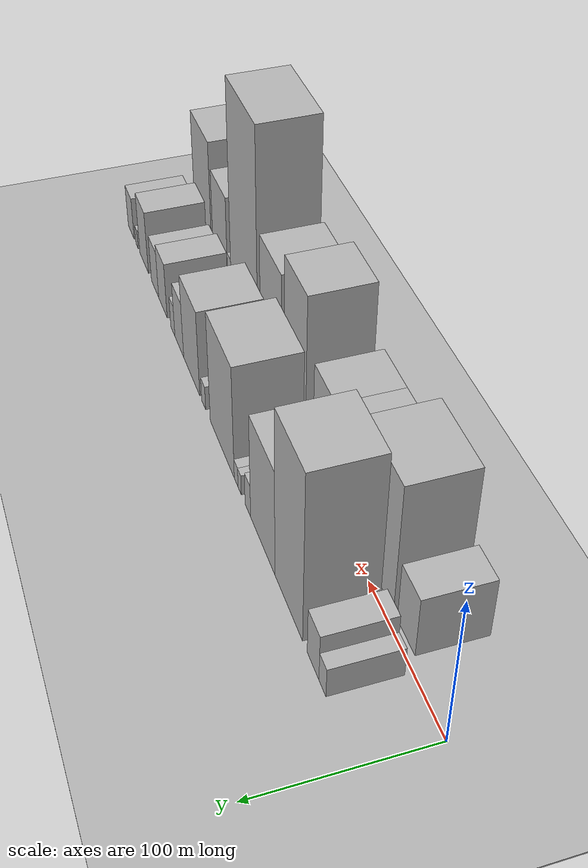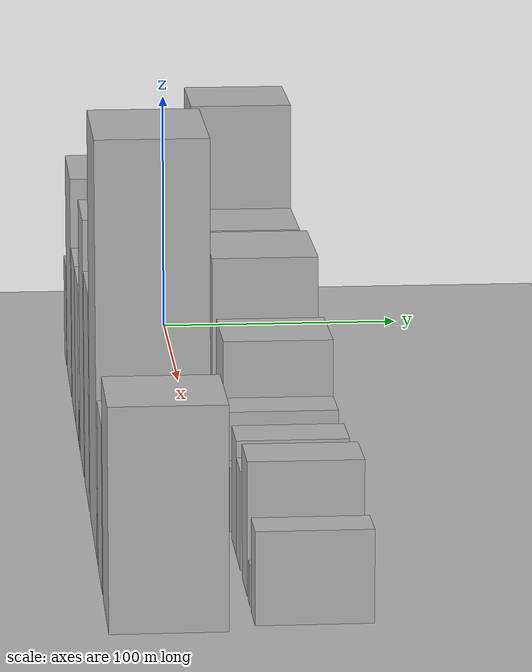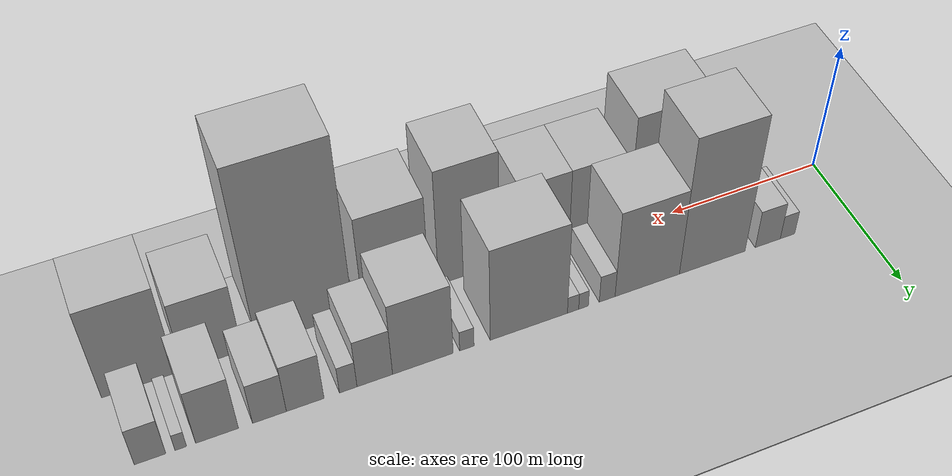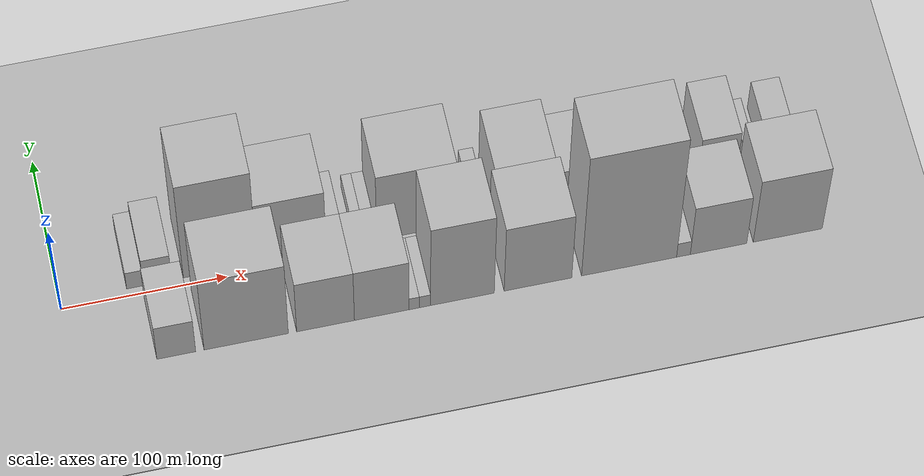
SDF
<?xml version="1.0" encoding="utf-8"?>

<sdf version="1.6">

   <world name="default">

      <gui fullscreen="0">

         <camera name="user_camera">

            <pose>-15 0 4.57585 0 0 0</pose>

            <view_controller>orbit</view_controller>

         </camera>

      </gui>

      <scene>

         <sky>

           <clouds>

             <speed>12</speed>

           </clouds>

         </sky>

         <ambient>0.4 0.4 0.4 1</ambient>

         <background>0.7 0.7 0.7 1</background>

         <shadows>1</shadows>

      </scene>

      <gravity>0 0 -9.8066</gravity>

      <magnetic_field>6e-06 2.3e-05 -4.2e-05</magnetic_field>

      <physics default="0" name="default_physics" type="ode">

         <ode>

            <solver>

               <type>quick</type>

               <iters>10</iters>

               <sor>1.0</sor>

               <use_dynamic_moi_rescaling>0</use_dynamic_moi_rescaling>

            </solver>

            <constraints>

               <cfm>0</cfm>

               <erp>0.2</erp>

               <contact_max_correcting_vel>100</contact_max_correcting_vel>

               <contact_surface_layer>0.001</contact_surface_layer>

            </constraints>

         </ode>

         <max_step_size>0.004</max_step_size>

         <real_time_factor>1</real_time_factor>

         <real_time_update_rate>250</real_time_update_rate>

      </physics>

      <light name="sun" type="directional">

         <cast_shadows>1</cast_shadows>

         <pose>0 0 10 0 0 0</pose>

         <diffuse>0.8 0.8 0.8 1</diffuse>

         <specular>0.2 0.2 0.2 1</specular>

         <attenuation>

            <range>1000</range>

            <constant>0.9</constant>

            <linear>0.01</linear>

            <quadratic>0.001</quadratic>

         </attenuation>

         <direction>-0.5 0.1 -0.9</direction>

      </light>

      <include>

         <name>ground_plane_1</name>

         <uri>model://HANNAS_ground_plane</uri>

         <pose>0 0 0  0 0 0</pose>

      </include>

      <include>

         <name>ground_plane_2</name>

         <uri>model://HANNAS_ground_plane</uri>

         <pose>100 0 0  0 0 0</pose>

      </include>

      <model name="building_1">

         <static>1</static>

         <pose frame="">45.0158 24.5000 0 0.000000 0.000000 1.570796</pose>

         <link name="link">

            <pose frame="">0 0 10.50 0 0 0</pose>

            <collision name="collision">

               <geometry>

                  <box>

                     <size>40.0000 10.0315 21.0000</size>

                  </box>

               </geometry>

               <max_contacts>10</max_contacts>

               <surface>

                  <contact>

                     <ode/>

                  </contact>

                  <bounce/>

                  <friction>

                     <torsional>

                        <ode/>

                     </torsional>

                     <ode/>

                  </friction>

               </surface>

            </collision>

            <visual name="visual">

               <cast_shadows>0</cast_shadows>

               <geometry>

                  <box>

                     <size>40.0000 10.0315 21.0000</size>

                  </box>

               </geometry>

               <material>

                  <script>

                     <uri>model://HANNAS_wall/materials/scripts</uri>

                     <uri>model://HANNAS_wall/materials/textures</uri>

                     <name>vrc/HANNAS_wall</name>

                  </script>

               </material>

            </visual>

            <self_collide>0</self_collide>

            <enable_wind>0</enable_wind>

            <kinematic>0</kinematic>

         </link>

      </model>

      <model name="building_2">

         <static>1</static>

         <pose frame="">58.6324 24.5000 0 0.000000 0.000000 1.570796</pose>

         <link name="link">

            <pose frame="">0 0 16.50 0 0 0</pose>

            <collision name="collision">

               <geometry>

                  <box>

                     <size>40.0000 17.2018 33.0000</size>

                  </box>

               </geometry>

               <max_contacts>10</max_contacts>

               <surface>

                  <contact>

                     <ode/>

                  </contact>

                  <bounce/>

                  <friction>

                     <torsional>

                        <ode/>

                     </torsional>

                     <ode/>

                  </friction>

               </surface>

            </collision>

            <visual name="visual">

               <cast_shadows>0</cast_shadows>

               <geometry>

                  <box>

                     <size>40.0000 17.2018 33.0000</size>

                  </box>

               </geometry>

               <material>

                  <script>

                     <uri>model://HANNAS_wall/materials/scripts</uri>

                     <uri>model://HANNAS_wall/materials/textures</uri>

                     <name>vrc/HANNAS_wall</name>

                  </script>

               </material>

            </visual>

            <self_collide>0</self_collide>

            <enable_wind>0</enable_wind>

            <kinematic>0</kinematic>

         </link>

      </model>

      <model name="building_3">

         <static>1</static>

         <pose frame="">96.3854 24.5000 0 0.000000 0.000000 1.570796</pose>

         <link name="link">

            <pose frame="">0 0 58.50 0 0 0</pose>

            <collision name="collision">

               <geometry>

                  <box>

                     <size>40.0000 44.3041 117.0000</size>

                  </box>

               </geometry>

               <max_contacts>10</max_contacts>

               <surface>

                  <contact>

                     <ode/>

                  </contact>

                  <bounce/>

                  <friction>

                     <torsional>

                        <ode/>

                     </torsional>

                     <ode/>

                  </friction>

               </surface>

            </collision>

            <visual name="visual">

               <cast_shadows>0</cast_shadows>

               <geometry>

                  <box>

                     <size>40.0000 44.3041 117.0000</size>

                  </box>

               </geometry>

               <material>

                  <script>

                     <uri>model://HANNAS_wall/materials/scripts</uri>

                     <uri>model://HANNAS_wall/materials/textures</uri>

                     <name>vrc/HANNAS_wall</name>

                  </script>

               </material>

            </visual>

            <self_collide>0</self_collide>

            <enable_wind>0</enable_wind>

            <kinematic>0</kinematic>

         </link>

      </model>

      <model name="building_4">

         <static>1</static>

         <pose frame="">139.6965 24.5000 0 0.000000 0.000000 1.570796</pose>

         <link name="link">

            <pose frame="">0 0 37.50 0 0 0</pose>

            <collision name="collision">

               <geometry>

                  <box>

                     <size>40.0000 42.3180 75.0000</size>

                  </box>

               </geometry>

               <max_contacts>10</max_contacts>

               <surface>

                  <contact>

                     <ode/>

                  </contact>

                  <bounce/>

                  <friction>

                     <torsional>

                        <ode/>

                     </torsional>

                     <ode/>

                  </friction>

               </surface>

            </collision>

            <visual name="visual">

               <cast_shadows>0</cast_shadows>

               <geometry>

                  <box>

                     <size>40.0000 42.3180 75.0000</size>

                  </box>

               </geometry>

               <material>

                  <script>

                     <uri>model://HANNAS_wall/materials/scripts</uri>

                     <uri>model://HANNAS_wall/materials/textures</uri>

                     <name>vrc/HANNAS_wall</name>

                  </script>

               </material>

            </visual>

            <self_collide>0</self_collide>

            <enable_wind>0</enable_wind>

            <kinematic>0</kinematic>

         </link>

      </model>

      <model name="building_5">

         <static>1</static>

         <pose frame="">165.9665 24.5000 0 0.000000 0.000000 1.570796</pose>

         <link name="link">

            <pose frame="">0 0 12.00 0 0 0</pose>

            <collision name="collision">

               <geometry>

                  <box>

                     <size>40.0000 10.2221 24.0000</size>

                  </box>

               </geometry>

               <max_contacts>10</max_contacts>

               <surface>

                  <contact>

                     <ode/>

                  </contact>

                  <bounce/>

                  <friction>

                     <torsional>

                        <ode/>

                     </torsional>

                     <ode/>

                  </friction>

               </surface>

            </collision>

            <visual name="visual">

               <cast_shadows>0</cast_shadows>

               <geometry>

                  <box>

                     <size>40.0000 10.2221 24.0000</size>

                  </box>

               </geometry>

               <material>

                  <script>

                     <uri>model://HANNAS_wall/materials/scripts</uri>

                     <uri>model://HANNAS_wall/materials/textures</uri>

                     <name>vrc/HANNAS_wall</name>

                  </script>

               </material>

            </visual>

            <self_collide>0</self_collide>

            <enable_wind>0</enable_wind>

            <kinematic>0</kinematic>

         </link>

      </model>

      <model name="building_6">

         <static>1</static>

         <pose frame="">181.2003 24.5000 0 0.000000 0.000000 1.570796</pose>

         <link name="link">

            <pose frame="">0 0 7.50 0 0 0</pose>

            <collision name="collision">

               <geometry>

                  <box>

                     <size>40.0000 6.2456 15.0000</size>

                  </box>

               </geometry>

               <max_contacts>10</max_contacts>

               <surface>

                  <contact>

                     <ode/>

                  </contact>

                  <bounce/>

                  <friction>

                     <torsional>

                        <ode/>

                     </torsional>

                     <ode/>

                  </friction>

               </surface>

            </collision>

            <visual name="visual">

               <cast_shadows>0</cast_shadows>

               <geometry>

                  <box>

                     <size>40.0000 6.2456 15.0000</size>

                  </box>

               </geometry>

               <material>

                  <script>

                     <uri>model://HANNAS_wall/materials/scripts</uri>

                     <uri>model://HANNAS_wall/materials/textures</uri>

                     <name>vrc/HANNAS_wall</name>

                  </script>

               </material>

            </visual>

            <self_collide>0</self_collide>

            <enable_wind>0</enable_wind>

            <kinematic>0</kinematic>

         </link>

      </model>

      <model name="building_7">

         <static>1</static>

         <pose frame="">187.9202 24.5000 0 0.000000 0.000000 1.570796</pose>

         <link name="link">

            <pose frame="">0 0 7.50 0 0 0</pose>

            <collision name="collision">

               <geometry>

                  <box>

                     <size>40.0000 7.1940 15.0000</size>

                  </box>

               </geometry>

               <max_contacts>10</max_contacts>

               <surface>

                  <contact>

                     <ode/>

                  </contact>

                  <bounce/>

                  <friction>

                     <torsional>

                        <ode/>

                     </torsional>

                     <ode/>

                  </friction>

               </surface>

            </collision>

            <visual name="visual">

               <cast_shadows>0</cast_shadows>

               <geometry>

                  <box>

                     <size>40.0000 7.1940 15.0000</size>

                  </box>

               </geometry>

               <material>

                  <script>

                     <uri>model://HANNAS_wall/materials/scripts</uri>

                     <uri>model://HANNAS_wall/materials/textures</uri>

                     <name>vrc/HANNAS_wall</name>

                  </script>

               </material>

            </visual>

            <self_collide>0</self_collide>

            <enable_wind>0</enable_wind>

            <kinematic>0</kinematic>

         </link>

      </model>

      <model name="building_8">

         <static>1</static>

         <pose frame="">215.7750 24.5000 0 0.000000 0.000000 1.570796</pose>

         <link name="link">

            <pose frame="">0 0 40.50 0 0 0</pose>

            <collision name="collision">

               <geometry>

                  <box>

                     <size>40.0000 48.5157 81.0000</size>

                  </box>

               </geometry>

               <max_contacts>10</max_contacts>

               <surface>

                  <contact>

                     <ode/>

                  </contact>

                  <bounce/>

                  <friction>

                     <torsional>

                        <ode/>

                     </torsional>

                     <ode/>

                  </friction>

               </surface>

            </collision>

            <visual name="visual">

               <cast_shadows>0</cast_shadows>

               <geometry>

                  <box>

                     <size>40.0000 48.5157 81.0000</size>

                  </box>

               </geometry>

               <material>

                  <script>

                     <uri>model://HANNAS_wall/materials/scripts</uri>

                     <uri>model://HANNAS_wall/materials/textures</uri>

                     <name>vrc/HANNAS_wall</name>

                  </script>

               </material>

            </visual>

            <self_collide>0</self_collide>

            <enable_wind>0</enable_wind>

            <kinematic>0</kinematic>

         </link>

      </model>

      <model name="building_9">

         <static>1</static>

         <pose frame="">254.4575 24.5000 0 0.000000 0.000000 1.570796</pose>

         <link name="link">

            <pose frame="">0 0 9.00 0 0 0</pose>

            <collision name="collision">

               <geometry>

                  <box>

                     <size>40.0000 8.8493 18.0000</size>

                  </box>

               </geometry>

               <max_contacts>10</max_contacts>

               <surface>

                  <contact>

                     <ode/>

                  </contact>

                  <bounce/>

                  <friction>

                     <torsional>

                        <ode/>

                     </torsional>

                     <ode/>

                  </friction>

               </surface>

            </collision>

            <visual name="visual">

               <cast_shadows>0</cast_shadows>

               <geometry>

                  <box>

                     <size>40.0000 8.8493 18.0000</size>

                  </box>

               </geometry>

               <material>

                  <script>

                     <uri>model://HANNAS_wall/materials/scripts</uri>

                     <uri>model://HANNAS_wall/materials/textures</uri>

                     <name>vrc/HANNAS_wall</name>

                  </script>

               </material>

            </visual>

            <self_collide>0</self_collide>

            <enable_wind>0</enable_wind>

            <kinematic>0</kinematic>

         </link>

      </model>

      <model name="building_10">

         <static>1</static>

         <pose frame="">281.1869 24.5000 0 0.000000 0.000000 1.570796</pose>

         <link name="link">

            <pose frame="">0 0 31.50 0 0 0</pose>

            <collision name="collision">

               <geometry>

                  <box>

                     <size>40.0000 36.6095 63.0000</size>

                  </box>

               </geometry>

               <max_contacts>10</max_contacts>

               <surface>

                  <contact>

                     <ode/>

                  </contact>

                  <bounce/>

                  <friction>

                     <torsional>

                        <ode/>

                     </torsional>

                     <ode/>

                  </friction>

               </surface>

            </collision>

            <visual name="visual">

               <cast_shadows>0</cast_shadows>

               <geometry>

                  <box>

                     <size>40.0000 36.6095 63.0000</size>

                  </box>

               </geometry>

               <material>

                  <script>

                     <uri>model://HANNAS_wall/materials/scripts</uri>

                     <uri>model://HANNAS_wall/materials/textures</uri>

                     <name>vrc/HANNAS_wall</name>

                  </script>

               </material>

            </visual>

            <self_collide>0</self_collide>

            <enable_wind>0</enable_wind>

            <kinematic>0</kinematic>

         </link>

      </model>

      <model name="building_11">

         <static>1</static>

         <pose frame="">310.0499 24.5000 0 0.000000 0.000000 1.570796</pose>

         <link name="link">

            <pose frame="">0 0 21.00 0 0 0</pose>

            <collision name="collision">

               <geometry>

                  <box>

                     <size>40.0000 21.1164 42.0000</size>

                  </box>

               </geometry>

               <max_contacts>10</max_contacts>

               <surface>

                  <contact>

                     <ode/>

                  </contact>

                  <bounce/>

                  <friction>

                     <torsional>

                        <ode/>

                     </torsional>

                     <ode/>

                  </friction>

               </surface>

            </collision>

            <visual name="visual">

               <cast_shadows>0</cast_shadows>

               <geometry>

                  <box>

                     <size>40.0000 21.1164 42.0000</size>

                  </box>

               </geometry>

               <material>

                  <script>

                     <uri>model://HANNAS_wall/materials/scripts</uri>

                     <uri>model://HANNAS_wall/materials/textures</uri>

                     <name>vrc/HANNAS_wall</name>

                  </script>

               </material>

            </visual>

            <self_collide>0</self_collide>

            <enable_wind>0</enable_wind>

            <kinematic>0</kinematic>

         </link>

      </model>

      <model name="building_12">

         <static>1</static>

         <pose frame="">325.7753 24.5000 0 0.000000 0.000000 1.570796</pose>

         <link name="link">

            <pose frame="">0 0 12.00 0 0 0</pose>

            <collision name="collision">

               <geometry>

                  <box>

                     <size>40.0000 10.3344 24.0000</size>

                  </box>

               </geometry>

               <max_contacts>10</max_contacts>

               <surface>

                  <contact>

                     <ode/>

                  </contact>

                  <bounce/>

                  <friction>

                     <torsional>

                        <ode/>

                     </torsional>

                     <ode/>

                  </friction>

               </surface>

            </collision>

            <visual name="visual">

               <cast_shadows>0</cast_shadows>

               <geometry>

                  <box>

                     <size>40.0000 10.3344 24.0000</size>

                  </box>

               </geometry>

               <material>

                  <script>

                     <uri>model://HANNAS_wall/materials/scripts</uri>

                     <uri>model://HANNAS_wall/materials/textures</uri>

                     <name>vrc/HANNAS_wall</name>

                  </script>

               </material>

            </visual>

            <self_collide>0</self_collide>

            <enable_wind>0</enable_wind>

            <kinematic>0</kinematic>

         </link>

      </model>

      <model name="building_13">

         <static>1</static>

         <pose frame="">350.8565 24.5000 0 0.000000 0.000000 1.570796</pose>

         <link name="link">

            <pose frame="">0 0 21.00 0 0 0</pose>

            <collision name="collision">

               <geometry>

                  <box>

                     <size>40.0000 21.8279 42.0000</size>

                  </box>

               </geometry>

               <max_contacts>10</max_contacts>

               <surface>

                  <contact>

                     <ode/>

                  </contact>

                  <bounce/>

                  <friction>

                     <torsional>

                        <ode/>

                     </torsional>

                     <ode/>

                  </friction>

               </surface>

            </collision>

            <visual name="visual">

               <cast_shadows>0</cast_shadows>

               <geometry>

                  <box>

                     <size>40.0000 21.8279 42.0000</size>

                  </box>

               </geometry>

               <material>

                  <script>

                     <uri>model://HANNAS_wall/materials/scripts</uri>

                     <uri>model://HANNAS_wall/materials/textures</uri>

                     <name>vrc/HANNAS_wall</name>

                  </script>

               </material>

            </visual>

            <self_collide>0</self_collide>

            <enable_wind>0</enable_wind>

            <kinematic>0</kinematic>

         </link>

      </model>

      <model name="building_14">

         <static>1</static>

         <pose frame="">371.4432 24.5000 0 0.000000 0.000000 1.570796</pose>

         <link name="link">

            <pose frame="">0 0 18.00 0 0 0</pose>

            <collision name="collision">

               <geometry>

                  <box>

                     <size>40.0000 19.3454 36.0000</size>

                  </box>

               </geometry>

               <max_contacts>10</max_contacts>

               <surface>

                  <contact>

                     <ode/>

                  </contact>

                  <bounce/>

                  <friction>

                     <torsional>

                        <ode/>

                     </torsional>

                     <ode/>

                  </friction>

               </surface>

            </collision>

            <visual name="visual">

               <cast_shadows>0</cast_shadows>

               <geometry>

                  <box>

                     <size>40.0000 19.3454 36.0000</size>

                  </box>

               </geometry>

               <material>

                  <script>

                     <uri>model://HANNAS_wall/materials/scripts</uri>

                     <uri>model://HANNAS_wall/materials/textures</uri>

                     <name>vrc/HANNAS_wall</name>

                  </script>

               </material>

            </visual>

            <self_collide>0</self_collide>

            <enable_wind>0</enable_wind>

            <kinematic>0</kinematic>

         </link>

      </model>

      <model name="building_15">

         <static>1</static>

         <pose frame="">401.1486 24.5000 0 0.000000 0.000000 1.570796</pose>

         <link name="link">

            <pose frame="">0 0 24.00 0 0 0</pose>

            <collision name="collision">

               <geometry>

                  <box>

                     <size>40.0000 24.0653 48.0000</size>

                  </box>

               </geometry>

               <max_contacts>10</max_contacts>

               <surface>

                  <contact>

                     <ode/>

                  </contact>

                  <bounce/>

                  <friction>

                     <torsional>

                        <ode/>

                     </torsional>

                     <ode/>

                  </friction>

               </surface>

            </collision>

            <visual name="visual">

               <cast_shadows>0</cast_shadows>

               <geometry>

                  <box>

                     <size>40.0000 24.0653 48.0000</size>

                  </box>

               </geometry>

               <material>

                  <script>

                     <uri>model://HANNAS_wall/materials/scripts</uri>

                     <uri>model://HANNAS_wall/materials/textures</uri>

                     <name>vrc/HANNAS_wall</name>

                  </script>

               </material>

            </visual>

            <self_collide>0</self_collide>

            <enable_wind>0</enable_wind>

            <kinematic>0</kinematic>

         </link>

      </model>

      <model name="building_16">

         <static>1</static>

         <pose frame="">421.4278 24.5000 0 0.000000 0.000000 1.570796</pose>

         <link name="link">

            <pose frame="">0 0 7.50 0 0 0</pose>

            <collision name="collision">

               <geometry>

                  <box>

                     <size>40.0000 6.4932 15.0000</size>

                  </box>

               </geometry>

               <max_contacts>10</max_contacts>

               <surface>

                  <contact>

                     <ode/>

                  </contact>

                  <bounce/>

                  <friction>

                     <torsional>

                        <ode/>

                     </torsional>

                     <ode/>

                  </friction>

               </surface>

            </collision>

            <visual name="visual">

               <cast_shadows>0</cast_shadows>

               <geometry>

                  <box>

                     <size>40.0000 6.4932 15.0000</size>

                  </box>

               </geometry>

               <material>

                  <script>

                     <uri>model://HANNAS_wall/materials/scripts</uri>

                     <uri>model://HANNAS_wall/materials/textures</uri>

                     <name>vrc/HANNAS_wall</name>

                  </script>

               </material>

            </visual>

            <self_collide>0</self_collide>

            <enable_wind>0</enable_wind>

            <kinematic>0</kinematic>

         </link>

      </model>

      <model name="building_17">

         <static>1</static>

         <pose frame="">438.3536 24.5000 0 0.000000 0.000000 1.570796</pose>

         <link name="link">

            <pose frame="">0 0 16.50 0 0 0</pose>

            <collision name="collision">

               <geometry>

                  <box>

                     <size>40.0000 17.3582 33.0000</size>

                  </box>

               </geometry>

               <max_contacts>10</max_contacts>

               <surface>

                  <contact>

                     <ode/>

                  </contact>

                  <bounce/>

                  <friction>

                     <torsional>

                        <ode/>

                     </torsional>

                     <ode/>

                  </friction>

               </surface>

            </collision>

            <visual name="visual">

               <cast_shadows>0</cast_shadows>

               <geometry>

                  <box>

                     <size>40.0000 17.3582 33.0000</size>

                  </box>

               </geometry>

               <material>

                  <script>

                     <uri>model://HANNAS_wall/materials/scripts</uri>

                     <uri>model://HANNAS_wall/materials/textures</uri>

                     <name>vrc/HANNAS_wall</name>

                  </script>

               </material>

            </visual>

            <self_collide>0</self_collide>

            <enable_wind>0</enable_wind>

            <kinematic>0</kinematic>

         </link>

      </model>

      <model name="building_18">

         <static>1</static>

         <pose frame="">60.6383 -24.5000 0 0.000000 0.000000 1.570796</pose>

         <link name="link">

            <pose frame="">0 0 21.00 0 0 0</pose>

            <collision name="collision">

               <geometry>

                  <box>

                     <size>40.0000 23.2767 42.0000</size>

                  </box>

               </geometry>

               <max_contacts>10</max_contacts>

               <surface>

                  <contact>

                     <ode/>

                  </contact>

                  <bounce/>

                  <friction>

                     <torsional>

                        <ode/>

                     </torsional>

                     <ode/>

                  </friction>

               </surface>

            </collision>

            <visual name="visual">

               <cast_shadows>0</cast_shadows>

               <geometry>

                  <box>

                     <size>40.0000 23.2767 42.0000</size>

                  </box>

               </geometry>

               <material>

                  <script>

                     <uri>model://HANNAS_wall/materials/scripts</uri>

                     <uri>model://HANNAS_wall/materials/textures</uri>

                     <name>vrc/HANNAS_wall</name>

                  </script>

               </material>

            </visual>

            <self_collide>0</self_collide>

            <enable_wind>0</enable_wind>

            <kinematic>0</kinematic>

         </link>

      </model>

      <model name="building_19">

         <static>1</static>

         <pose frame="">102.5794 -24.5000 0 0.000000 0.000000 1.570796</pose>

         <link name="link">

            <pose frame="">0 0 45.00 0 0 0</pose>

            <collision name="collision">

               <geometry>

                  <box>

                     <size>40.0000 50.6055 90.0000</size>

                  </box>

               </geometry>

               <max_contacts>10</max_contacts>

               <surface>

                  <contact>

                     <ode/>

                  </contact>

                  <bounce/>

                  <friction>

                     <torsional>

                        <ode/>

                     </torsional>

                     <ode/>

                  </friction>

               </surface>

            </collision>

            <visual name="visual">

               <cast_shadows>0</cast_shadows>

               <geometry>

                  <box>

                     <size>40.0000 50.6055 90.0000</size>

                  </box>

               </geometry>

               <material>

                  <script>

                     <uri>model://HANNAS_wall/materials/scripts</uri>

                     <uri>model://HANNAS_wall/materials/textures</uri>

                     <name>vrc/HANNAS_wall</name>

                  </script>

               </material>

            </visual>

            <self_collide>0</self_collide>

            <enable_wind>0</enable_wind>

            <kinematic>0</kinematic>

         </link>

      </model>

      <model name="building_20">

         <static>1</static>

         <pose frame="">150.3091 -24.5000 0 0.000000 0.000000 1.570796</pose>

         <link name="link">

            <pose frame="">0 0 31.50 0 0 0</pose>

            <collision name="collision">

               <geometry>

                  <box>

                     <size>40.0000 34.8537 63.0000</size>

                  </box>

               </geometry>

               <max_contacts>10</max_contacts>

               <surface>

                  <contact>

                     <ode/>

                  </contact>

                  <bounce/>

                  <friction>

                     <torsional>

                        <ode/>

                     </torsional>

                     <ode/>

                  </friction>

               </surface>

            </collision>

            <visual name="visual">

               <cast_shadows>0</cast_shadows>

               <geometry>

                  <box>

                     <size>40.0000 34.8537 63.0000</size>

                  </box>

               </geometry>

               <material>

                  <script>

                     <uri>model://HANNAS_wall/materials/scripts</uri>

                     <uri>model://HANNAS_wall/materials/textures</uri>

                     <name>vrc/HANNAS_wall</name>

                  </script>

               </material>

            </visual>

            <self_collide>0</self_collide>

            <enable_wind>0</enable_wind>

            <kinematic>0</kinematic>

         </link>

      </model>

      <model name="building_21">

         <static>1</static>

         <pose frame="">184.2507 -24.5000 0 0.000000 0.000000 1.570796</pose>

         <link name="link">

            <pose frame="">0 0 31.50 0 0 0</pose>

            <collision name="collision">

               <geometry>

                  <box>

                     <size>40.0000 33.0296 63.0000</size>

                  </box>

               </geometry>

               <max_contacts>10</max_contacts>

               <surface>

                  <contact>

                     <ode/>

                  </contact>

                  <bounce/>

                  <friction>

                     <torsional>

                        <ode/>

                     </torsional>

                     <ode/>

                  </friction>

               </surface>

            </collision>

            <visual name="visual">

               <cast_shadows>0</cast_shadows>

               <geometry>

                  <box>

                     <size>40.0000 33.0296 63.0000</size>

                  </box>

               </geometry>

               <material>

                  <script>

                     <uri>model://HANNAS_wall/materials/scripts</uri>

                     <uri>model://HANNAS_wall/materials/textures</uri>

                     <name>vrc/HANNAS_wall</name>

                  </script>

               </material>

            </visual>

            <self_collide>0</self_collide>

            <enable_wind>0</enable_wind>

            <kinematic>0</kinematic>

         </link>

      </model>

      <model name="building_22">

         <static>1</static>

         <pose frame="">203.8833 -24.5000 0 0.000000 0.000000 1.570796</pose>

         <link name="link">

            <pose frame="">0 0 7.50 0 0 0</pose>

            <collision name="collision">

               <geometry>

                  <box>

                     <size>40.0000 6.2356 15.0000</size>

                  </box>

               </geometry>

               <max_contacts>10</max_contacts>

               <surface>

                  <contact>

                     <ode/>

                  </contact>

                  <bounce/>

                  <friction>

                     <torsional>

                        <ode/>

                     </torsional>

                     <ode/>

                  </friction>

               </surface>

            </collision>

            <visual name="visual">

               <cast_shadows>0</cast_shadows>

               <geometry>

                  <box>

                     <size>40.0000 6.2356 15.0000</size>

                  </box>

               </geometry>

               <material>

                  <script>

                     <uri>model://HANNAS_wall/materials/scripts</uri>

                     <uri>model://HANNAS_wall/materials/textures</uri>

                     <name>vrc/HANNAS_wall</name>

                  </script>

               </material>

            </visual>

            <self_collide>0</self_collide>

            <enable_wind>0</enable_wind>

            <kinematic>0</kinematic>

         </link>

      </model>

      <model name="building_23">

         <static>1</static>

         <pose frame="">210.3707 -24.5000 0 0.000000 0.000000 1.570796</pose>

         <link name="link">

            <pose frame="">0 0 7.50 0 0 0</pose>

            <collision name="collision">

               <geometry>

                  <box>

                     <size>40.0000 6.7393 15.0000</size>

                  </box>

               </geometry>

               <max_contacts>10</max_contacts>

               <surface>

                  <contact>

                     <ode/>

                  </contact>

                  <bounce/>

                  <friction>

                     <torsional>

                        <ode/>

                     </torsional>

                     <ode/>

                  </friction>

               </surface>

            </collision>

            <visual name="visual">

               <cast_shadows>0</cast_shadows>

               <geometry>

                  <box>

                     <size>40.0000 6.7393 15.0000</size>

                  </box>

               </geometry>

               <material>

                  <script>

                     <uri>model://HANNAS_wall/materials/scripts</uri>

                     <uri>model://HANNAS_wall/materials/textures</uri>

                     <name>vrc/HANNAS_wall</name>

                  </script>

               </material>

            </visual>

            <self_collide>0</self_collide>

            <enable_wind>0</enable_wind>

            <kinematic>0</kinematic>

         </link>

      </model>

      <model name="building_24">

         <static>1</static>

         <pose frame="">233.0725 -24.5000 0 0.000000 0.000000 1.570796</pose>

         <link name="link">

            <pose frame="">0 0 49.50 0 0 0</pose>

            <collision name="collision">

               <geometry>

                  <box>

                     <size>40.0000 38.6642 99.0000</size>

                  </box>

               </geometry>

               <max_contacts>10</max_contacts>

               <surface>

                  <contact>

                     <ode/>

                  </contact>

                  <bounce/>

                  <friction>

                     <torsional>

                        <ode/>

                     </torsional>

                     <ode/>

                  </friction>

               </surface>

            </collision>

            <visual name="visual">

               <cast_shadows>0</cast_shadows>

               <geometry>

                  <box>

                     <size>40.0000 38.6642 99.0000</size>

                  </box>

               </geometry>

               <material>

                  <script>

                     <uri>model://HANNAS_wall/materials/scripts</uri>

                     <uri>model://HANNAS_wall/materials/textures</uri>

                     <name>vrc/HANNAS_wall</name>

                  </script>

               </material>

            </visual>

            <self_collide>0</self_collide>

            <enable_wind>0</enable_wind>

            <kinematic>0</kinematic>

         </link>

      </model>

      <model name="building_25">

         <static>1</static>

         <pose frame="">278.9794 -24.5000 0 0.000000 0.000000 1.570796</pose>

         <link name="link">

            <pose frame="">0 0 40.50 0 0 0</pose>

            <collision name="collision">

               <geometry>

                  <box>

                     <size>40.0000 41.1498 81.0000</size>

                  </box>

               </geometry>

               <max_contacts>10</max_contacts>

               <surface>

                  <contact>

                     <ode/>

                  </contact>

                  <bounce/>

                  <friction>

                     <torsional>

                        <ode/>

                     </torsional>

                     <ode/>

                  </friction>

               </surface>

            </collision>

            <visual name="visual">

               <cast_shadows>0</cast_shadows>

               <geometry>

                  <box>

                     <size>40.0000 41.1498 81.0000</size>

                  </box>

               </geometry>

               <material>

                  <script>

                     <uri>model://HANNAS_wall/materials/scripts</uri>

                     <uri>model://HANNAS_wall/materials/textures</uri>

                     <name>vrc/HANNAS_wall</name>

                  </script>

               </material>

            </visual>

            <self_collide>0</self_collide>

            <enable_wind>0</enable_wind>

            <kinematic>0</kinematic>

         </link>

      </model>

      <model name="building_26">

         <static>1</static>

         <pose frame="">334.5907 -24.5000 0 0.000000 0.000000 1.570796</pose>

         <link name="link">

            <pose frame="">0 0 75.00 0 0 0</pose>

            <collision name="collision">

               <geometry>

                  <box>

                     <size>40.0000 58.0728 150.0000</size>

                  </box>

               </geometry>

               <max_contacts>10</max_contacts>

               <surface>

                  <contact>

                     <ode/>

                  </contact>

                  <bounce/>

                  <friction>

                     <torsional>

                        <ode/>

                     </torsional>

                     <ode/>

                  </friction>

               </surface>

            </collision>

            <visual name="visual">

               <cast_shadows>0</cast_shadows>

               <geometry>

                  <box>

                     <size>40.0000 58.0728 150.0000</size>

                  </box>

               </geometry>

               <material>

                  <script>

                     <uri>model://HANNAS_wall/materials/scripts</uri>

                     <uri>model://HANNAS_wall/materials/textures</uri>

                     <name>vrc/HANNAS_wall</name>

                  </script>

               </material>

            </visual>

            <self_collide>0</self_collide>

            <enable_wind>0</enable_wind>

            <kinematic>0</kinematic>

         </link>

      </model>

      <model name="building_27">

         <static>1</static>

         <pose frame="">367.8494 -24.5000 0 0.000000 0.000000 1.570796</pose>

         <link name="link">

            <pose frame="">0 0 9.00 0 0 0</pose>

            <collision name="collision">

               <geometry>

                  <box>

                     <size>40.0000 8.4445 18.0000</size>

                  </box>

               </geometry>

               <max_contacts>10</max_contacts>

               <surface>

                  <contact>

                     <ode/>

                  </contact>

                  <bounce/>

                  <friction>

                     <torsional>

                        <ode/>

                     </torsional>

                     <ode/>

                  </friction>

               </surface>

            </collision>

            <visual name="visual">

               <cast_shadows>0</cast_shadows>

               <geometry>

                  <box>

                     <size>40.0000 8.4445 18.0000</size>

                  </box>

               </geometry>

               <material>

                  <script>

                     <uri>model://HANNAS_wall/materials/scripts</uri>

                     <uri>model://HANNAS_wall/materials/textures</uri>

                     <name>vrc/HANNAS_wall</name>

                  </script>

               </material>

            </visual>

            <self_collide>0</self_collide>

            <enable_wind>0</enable_wind>

            <kinematic>0</kinematic>

         </link>

      </model>

      <model name="building_28">

         <static>1</static>

         <pose frame="">389.3724 -24.5000 0 0.000000 0.000000 1.570796</pose>

         <link name="link">

            <pose frame="">0 0 30.00 0 0 0</pose>

            <collision name="collision">

               <geometry>

                  <box>

                     <size>40.0000 34.6014 60.0000</size>

                  </box>

               </geometry>

               <max_contacts>10</max_contacts>

               <surface>

                  <contact>

                     <ode/>

                  </contact>

                  <bounce/>

                  <friction>

                     <torsional>

                        <ode/>

                     </torsional>

                     <ode/>

                  </friction>

               </surface>

            </collision>

            <visual name="visual">

               <cast_shadows>0</cast_shadows>

               <geometry>

                  <box>

                     <size>40.0000 34.6014 60.0000</size>

                  </box>

               </geometry>

               <material>

                  <script>

                     <uri>model://HANNAS_wall/materials/scripts</uri>

                     <uri>model://HANNAS_wall/materials/textures</uri>

                     <name>vrc/HANNAS_wall</name>

                  </script>

               </material>

            </visual>

            <self_collide>0</self_collide>

            <enable_wind>0</enable_wind>

            <kinematic>0</kinematic>

         </link>

      </model>

      <model name="building_29">

         <static>1</static>

         <pose frame="">431.9219 -24.5000 0 0.000000 0.000000 1.570796</pose>

         <link name="link">

            <pose frame="">0 0 39.00 0 0 0</pose>

            <collision name="collision">

               <geometry>

                  <box>

                     <size>40.0000 42.4976 78.0000</size>

                  </box>

               </geometry>

               <max_contacts>10</max_contacts>

               <surface>

                  <contact>

                     <ode/>

                  </contact>

                  <bounce/>

                  <friction>

                     <torsional>

                        <ode/>

                     </torsional>

                     <ode/>

                  </friction>

               </surface>

            </collision>

            <visual name="visual">

               <cast_shadows>0</cast_shadows>

               <geometry>

                  <box>

                     <size>40.0000 42.4976 78.0000</size>

                  </box>

               </geometry>

               <material>

                  <script>

                     <uri>model://HANNAS_wall/materials/scripts</uri>

                     <uri>model://HANNAS_wall/materials/textures</uri>

                     <name>vrc/HANNAS_wall</name>

                  </script>

               </material>

            </visual>

            <self_collide>0</self_collide>

            <enable_wind>0</enable_wind>

            <kinematic>0</kinematic>

         </link>

      </model>

   </world>

</sdf>

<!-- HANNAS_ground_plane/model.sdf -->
<sdf version="1.4">
<model name="HANNAS_ground_plane">
  <static>true</static>
    <link name="link">
      <collision name="collision">
        <geometry>
          <plane>
            <normal>0 0 1</normal>
            <size>1000 1000</size>
          </plane>
        </geometry>
        <surface>
          <friction>
            <ode>
              <mu>100</mu>
              <mu2>50</mu2>
            </ode>
          </friction>
        </surface>
      </collision>
      <visual name="visual">
        <cast_shadows>false</cast_shadows>
        <geometry>
          <plane>
            <normal>0 0 1</normal>
            <size>1000 1000</size>
          </plane>
        </geometry>
        <material>
          <script>
            <uri>model://HANNAS_ground_plane/materials/scripts/HANNAS_ground_plane.material</uri>
	    <uri>model://HANNAS_ground_plane/materials/textures</uri>
            <name>HANNASGroundPlane/Image</name>
          </script>
        </material>
      </visual>
    </link>
  </model>
</sdf>
